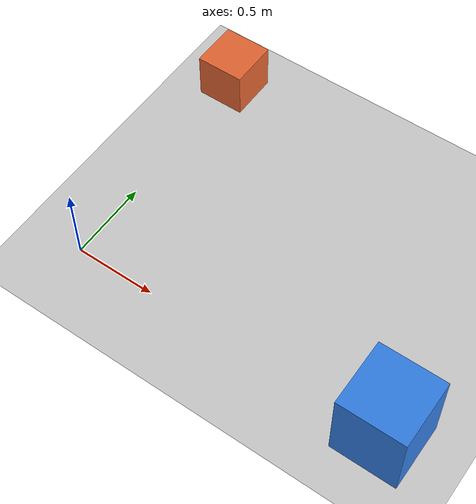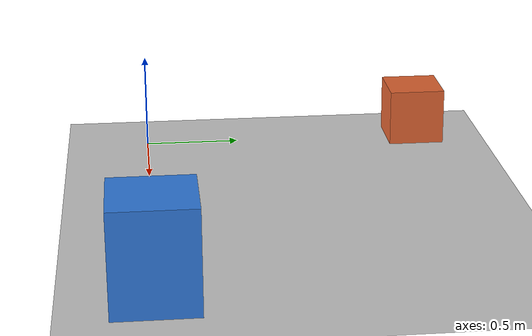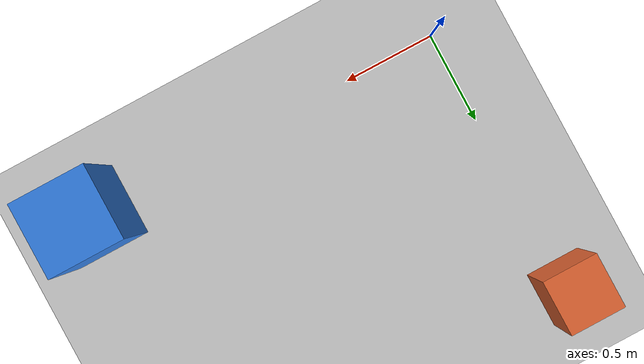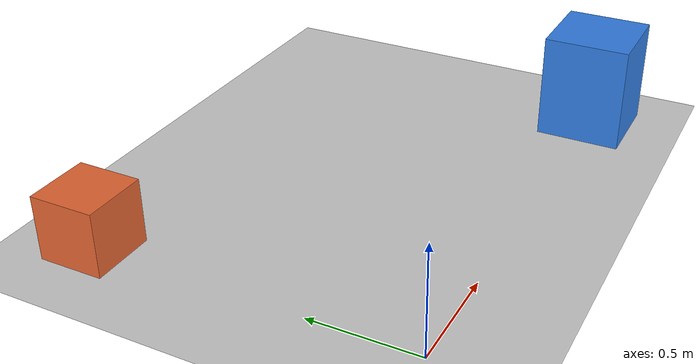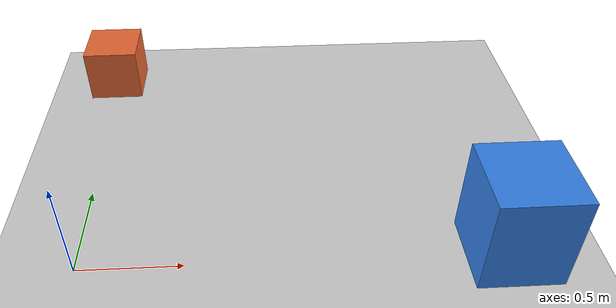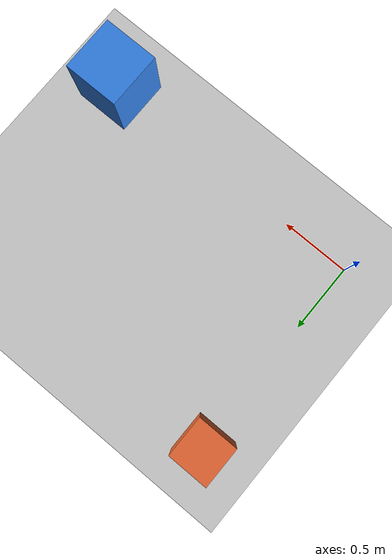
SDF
<?xml version="1.0" ?>
<sdf version="1.8">
  <world name="empty_world">

    <physics name="1ms" type="ignored">
      <max_step_size>0.003</max_step_size>
      <real_time_factor>1.0</real_time_factor>
    </physics>

    <plugin filename="gz-sim-physics-system"
            name="gz::sim::systems::Physics"/>
    <plugin filename="gz-sim-user-commands-system"
            name="gz::sim::systems::UserCommands"/>
    <plugin filename="gz-sim-scene-broadcaster-system"
            name="gz::sim::systems::SceneBroadcaster"/>

    <!-- Required to actually drive camera / lidar / IMU sensors. -->
    <plugin filename="gz-sim-sensors-system"
            name="gz::sim::systems::Sensors">
      <render_engine>ogre2</render_engine>
    </plugin>
    <plugin filename="gz-sim-imu-system"
            name="gz::sim::systems::Imu"/>

    <light type="directional" name="sun">
      <cast_shadows>true</cast_shadows>
      <pose>0 0 10 0 0 0</pose>
      <diffuse>0.8 0.8 0.8 1</diffuse>
      <specular>0.2 0.2 0.2 1</specular>
      <attenuation>
        <range>1000</range>
        <constant>0.9</constant>
        <linear>0.01</linear>
        <quadratic>0.001</quadratic>
      </attenuation>
      <direction>-0.5 0.1 -0.9</direction>
    </light>

    <model name="ground_plane">
      <static>true</static>
      <link name="link">
        <collision name="collision">
          <geometry>
            <plane>
              <normal>0 0 1</normal>
            </plane>
          </geometry>
        </collision>
        <visual name="visual">
          <geometry>
            <plane>
              <normal>0 0 1</normal>
              <size>100 100</size>
            </plane>
          </geometry>
          <material>
            <ambient>0.8 0.8 0.8 1</ambient>
            <diffuse>0.8 0.8 0.8 1</diffuse>
            <specular>0.8 0.8 0.8 1</specular>
          </material>
        </visual>
      </link>
    </model>

    <!-- A couple of reference boxes so the lidar/camera have something to
         see on first launch. -->
    <model name="ref_box_front">
      <static>true</static>
      <pose>2.0 0 0.25 0 0 0</pose>
      <link name="link">
        <collision name="c"><geometry><box><size>0.4 0.4 0.5</size></box></geometry></collision>
        <visual name="v">
          <geometry><box><size>0.4 0.4 0.5</size></box></geometry>
          <material>
            <ambient>0.2 0.5 0.9 1</ambient>
            <diffuse>0.2 0.5 0.9 1</diffuse>
          </material>
        </visual>
      </link>
    </model>

    <model name="ref_box_left">
      <static>true</static>
      <pose>0 1.5 0.15 0 0 0</pose>
      <link name="link">
        <collision name="c"><geometry><box><size>0.3 0.3 0.3</size></box></geometry></collision>
        <visual name="v">
          <geometry><box><size>0.3 0.3 0.3</size></box></geometry>
          <material>
            <ambient>0.9 0.4 0.2 1</ambient>
            <diffuse>0.9 0.4 0.2 1</diffuse>
          </material>
        </visual>
      </link>
    </model>

  </world>
</sdf>
